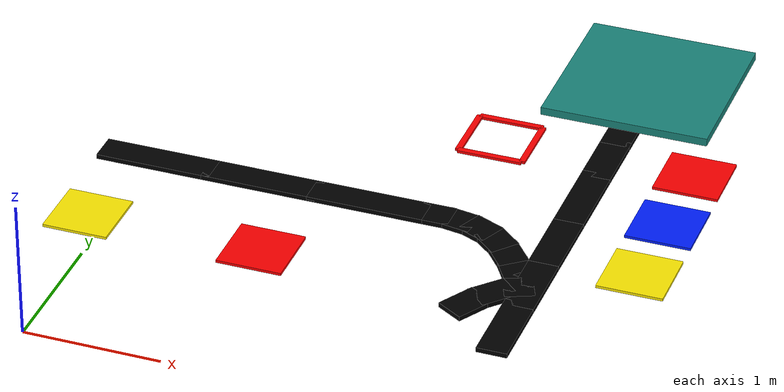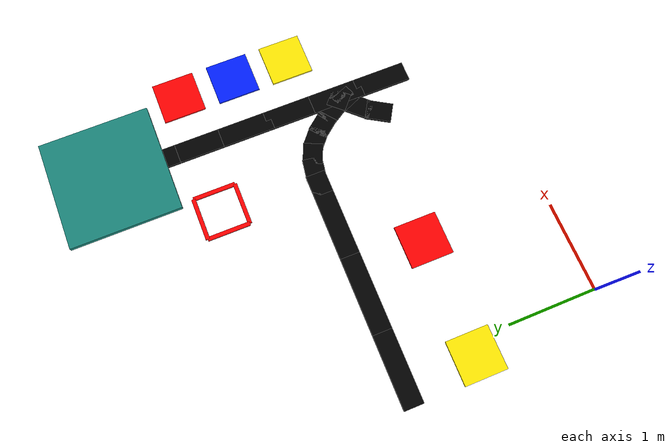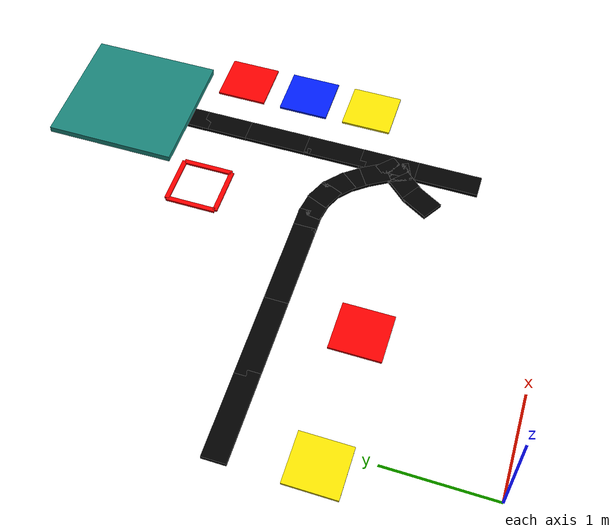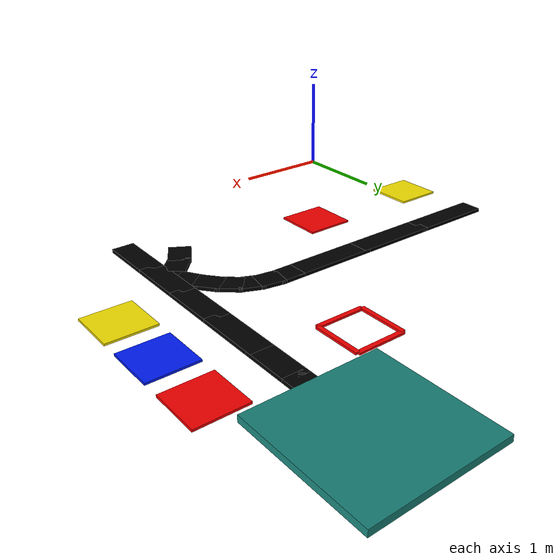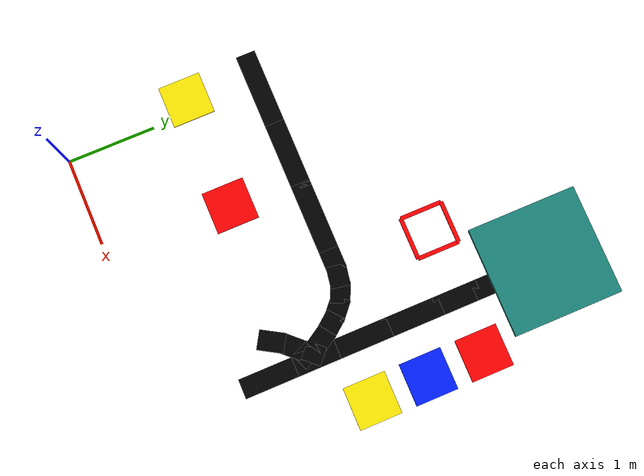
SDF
<sdf version="1.6">
 <world name="agv_factory_final_box_agv_v2">
  <include><uri>model://sun</uri></include>
  <model name="main_loop_42">
   <static>true</static>
   <pose>0.0500 2.2500 0.0175 0 0 0.0000</pose>
   <link name="link">
    <collision name="collision"><geometry><box><size>0.8600 0.2200 0.0350</size></box></geometry></collision>
    <visual name="visual">
     <geometry><box><size>0.8600 0.2200 0.0350</size></box></geometry>
     <material><ambient>0 0 0 1</ambient><diffuse>0 0 0 1</diffuse></material>
    </visual>
   </link>
  </model>
  <model name="main_loop_43">
   <static>true</static>
   <pose>0.8500 2.2500 0.0175 0 0 0.0000</pose>
   <link name="link">
    <collision name="collision"><geometry><box><size>0.8600 0.2200 0.0350</size></box></geometry></collision>
    <visual name="visual">
     <geometry><box><size>0.8600 0.2200 0.0350</size></box></geometry>
     <material><ambient>0 0 0 1</ambient><diffuse>0 0 0 1</diffuse></material>
    </visual>
   </link>
  </model>
  <model name="main_loop_44">
   <static>true</static>
   <pose>1.6500 2.2500 0.0175 0 0 0.0000</pose>
   <link name="link">
    <collision name="collision"><geometry><box><size>0.8600 0.2200 0.0350</size></box></geometry></collision>
    <visual name="visual">
     <geometry><box><size>0.8600 0.2200 0.0350</size></box></geometry>
     <material><ambient>0 0 0 1</ambient><diffuse>0 0 0 1</diffuse></material>
    </visual>
   </link>
  </model>
  <model name="main_loop_45">
   <static>true</static>
   <pose>2.1450 2.2500 0.0175 0 0 0.0000</pose>
   <link name="link">
    <collision name="collision"><geometry><box><size>0.2500 0.2200 0.0350</size></box></geometry></collision>
    <visual name="visual">
     <geometry><box><size>0.2500 0.2200 0.0350</size></box></geometry>
     <material><ambient>0 0 0 1</ambient><diffuse>0 0 0 1</diffuse></material>
    </visual>
   </link>
  </model>
  <model name="main_loop_46">
   <static>true</static>
   <pose>2.3300 2.2350 0.0175 0 0 -0.1651</pose>
   <link name="link">
    <collision name="collision"><geometry><box><size>0.2425 0.2200 0.0350</size></box></geometry></collision>
    <visual name="visual">
     <geometry><box><size>0.2425 0.2200 0.0350</size></box></geometry>
     <material><ambient>0 0 0 1</ambient><diffuse>0 0 0 1</diffuse></material>
    </visual>
   </link>
  </model>
  <model name="main_loop_47">
   <static>true</static>
   <pose>2.5000 2.1850 0.0175 0 0 -0.4124</pose>
   <link name="link">
    <collision name="collision"><geometry><box><size>0.2346 0.2200 0.0350</size></box></geometry></collision>
    <visual name="visual">
     <geometry><box><size>0.2346 0.2200 0.0350</size></box></geometry>
     <material><ambient>0 0 0 1</ambient><diffuse>0 0 0 1</diffuse></material>
    </visual>
   </link>
  </model>
  <model name="main_loop_48">
   <static>true</static>
   <pose>2.6500 2.0900 0.0175 0 0 -0.7086</pose>
   <link name="link">
    <collision name="collision"><geometry><box><size>0.2444 0.2200 0.0350</size></box></geometry></collision>
    <visual name="visual">
     <geometry><box><size>0.2444 0.2200 0.0350</size></box></geometry>
     <material><ambient>0 0 0 1</ambient><diffuse>0 0 0 1</diffuse></material>
    </visual>
   </link>
  </model>
  <model name="main_loop_49">
   <static>true</static>
   <pose>2.7800 1.9550 0.0175 0 0 -0.8961</pose>
   <link name="link">
    <collision name="collision"><geometry><box><size>0.2521 0.2200 0.0350</size></box></geometry></collision>
    <visual name="visual">
     <geometry><box><size>0.2521 0.2200 0.0350</size></box></geometry>
     <material><ambient>0 0 0 1</ambient><diffuse>0 0 0 1</diffuse></material>
    </visual>
   </link>
  </model>
  <model name="main_loop_50">
   <static>true</static>
   <pose>2.8900 1.8000 0.0175 0 0 -1.0122</pose>
   <link name="link">
    <collision name="collision"><geometry><box><size>0.2487 0.2200 0.0350</size></box></geometry></collision>
    <visual name="visual">
     <geometry><box><size>0.2487 0.2200 0.0350</size></box></geometry>
     <material><ambient>0 0 0 1</ambient><diffuse>0 0 0 1</diffuse></material>
    </visual>
   </link>
  </model>
  <model name="main_loop_51">
   <static>true</static>
   <pose>2.9950 1.6700 0.0175 0 0 -0.7378</pose>
   <link name="link">
    <collision name="collision"><geometry><box><size>0.2087 0.2200 0.0350</size></box></geometry></collision>
    <visual name="visual">
     <geometry><box><size>0.2087 0.2200 0.0350</size></box></geometry>
     <material><ambient>0 0 0 1</ambient><diffuse>0 0 0 1</diffuse></material>
    </visual>
   </link>
  </model>
  <model name="main_loop_52">
   <static>true</static>
   <pose>2.9800 1.5900 0.0175 0 0 -2.7367</pose>
   <link name="link">
    <collision name="collision"><geometry><box><size>0.2123 0.2200 0.0350</size></box></geometry></collision>
    <visual name="visual">
     <geometry><box><size>0.2123 0.2200 0.0350</size></box></geometry>
     <material><ambient>0 0 0 1</ambient><diffuse>0 0 0 1</diffuse></material>
    </visual>
   </link>
  </model>
  <model name="main_loop_53">
   <static>true</static>
   <pose>2.8350 1.4800 0.0175 0 0 -2.3239</pose>
   <link name="link">
    <collision name="collision"><geometry><box><size>0.2793 0.2200 0.0350</size></box></geometry></collision>
    <visual name="visual">
     <geometry><box><size>0.2793 0.2200 0.0350</size></box></geometry>
     <material><ambient>0 0 0 1</ambient><diffuse>0 0 0 1</diffuse></material>
    </visual>
   </link>
  </model>
  <model name="main_loop_54">
   <static>true</static>
   <pose>2.7000 1.3000 0.0175 0 0 -2.1112</pose>
   <link name="link">
    <collision name="collision"><geometry><box><size>0.2932 0.2200 0.0350</size></box></geometry></collision>
    <visual name="visual">
     <geometry><box><size>0.2932 0.2200 0.0350</size></box></geometry>
     <material><ambient>0 0 0 1</ambient><diffuse>0 0 0 1</diffuse></material>
    </visual>
   </link>
  </model>
  <model name="right_vertical_06">
   <static>true</static>
   <pose>3.0500 1.1250 0.0175 0 0 1.5708</pose>
   <link name="link">
    <collision name="collision"><geometry><box><size>0.6100 0.2200 0.0350</size></box></geometry></collision>
    <visual name="visual">
     <geometry><box><size>0.6100 0.2200 0.0350</size></box></geometry>
     <material><ambient>0 0 0 1</ambient><diffuse>0 0 0 1</diffuse></material>
    </visual>
   </link>
  </model>
  <model name="right_vertical_07">
   <static>true</static>
   <pose>3.0500 1.6750 0.0175 0 0 1.5708</pose>
   <link name="link">
    <collision name="collision"><geometry><box><size>0.6100 0.2200 0.0350</size></box></geometry></collision>
    <visual name="visual">
     <geometry><box><size>0.6100 0.2200 0.0350</size></box></geometry>
     <material><ambient>0 0 0 1</ambient><diffuse>0 0 0 1</diffuse></material>
    </visual>
   </link>
  </model>
  <model name="right_vertical_08">
   <static>true</static>
   <pose>3.0500 2.2250 0.0175 0 0 1.5708</pose>
   <link name="link">
    <collision name="collision"><geometry><box><size>0.6100 0.2200 0.0350</size></box></geometry></collision>
    <visual name="visual">
     <geometry><box><size>0.6100 0.2200 0.0350</size></box></geometry>
     <material><ambient>0 0 0 1</ambient><diffuse>0 0 0 1</diffuse></material>
    </visual>
   </link>
  </model>
  <model name="right_vertical_09">
   <static>true</static>
   <pose>3.0500 2.8000 0.0175 0 0 1.5708</pose>
   <link name="link">
    <collision name="collision"><geometry><box><size>0.6600 0.2200 0.0350</size></box></geometry></collision>
    <visual name="visual">
     <geometry><box><size>0.6600 0.2200 0.0350</size></box></geometry>
     <material><ambient>0 0 0 1</ambient><diffuse>0 0 0 1</diffuse></material>
    </visual>
   </link>
  </model>
  <model name="right_vertical_10">
   <static>true</static>
   <pose>3.0500 3.3250 0.0175 0 0 1.5708</pose>
   <link name="link">
    <collision name="collision"><geometry><box><size>0.5100 0.2200 0.0350</size></box></geometry></collision>
    <visual name="visual">
     <geometry><box><size>0.5100 0.2200 0.0350</size></box></geometry>
     <material><ambient>0 0 0 1</ambient><diffuse>0 0 0 1</diffuse></material>
    </visual>
   </link>
  </model>
  <model name="right_vertical_11">
   <static>true</static>
   <pose>3.0500 3.7250 0.0175 0 0 1.5708</pose>
   <link name="link">
    <collision name="collision"><geometry><box><size>0.4100 0.2200 0.0350</size></box></geometry></collision>
    <visual name="visual">
     <geometry><box><size>0.4100 0.2200 0.0350</size></box></geometry>
     <material><ambient>0 0 0 1</ambient><diffuse>0 0 0 1</diffuse></material>
    </visual>
   </link>
  </model>
  <model name="right_vertical_12">
   <static>true</static>
   <pose>3.0500 4.1750 0.0175 0 0 1.5708</pose>
   <link name="link">
    <collision name="collision"><geometry><box><size>0.6100 0.2200 0.0350</size></box></geometry></collision>
    <visual name="visual">
     <geometry><box><size>0.6100 0.2200 0.0350</size></box></geometry>
     <material><ambient>0 0 0 1</ambient><diffuse>0 0 0 1</diffuse></material>
    </visual>
   </link>
  </model>
  <model name="inout_area">
   <static>true</static>
   <pose>3.0500 4.3500 0.0650 0 0 0.0000</pose>
   <link name="link">
    <collision name="collision"><geometry><box><size>1.2500 1.2500 0.0600</size></box></geometry></collision>
    <visual name="visual">
     <geometry><box><size>1.2500 1.2500 0.0600</size></box></geometry>
     <material><ambient>0.1 0.52 0.48 1.0</ambient><diffuse>0.1 0.52 0.48 1.0</diffuse></material>
    </visual>
   </link>
  </model>
  <model name="finished_yellow_box">
   <static>true</static>
   <pose>-0.1500 1.4500 0.0100 0 0 0.0000</pose>
   <link name="link">
    <collision name="collision"><geometry><box><size>0.4800 0.4800 0.0200</size></box></geometry></collision>
    <visual name="visual">
     <geometry><box><size>0.4800 0.4800 0.0200</size></box></geometry>
     <material><ambient>1.0 0.92 0.0 1.0</ambient><diffuse>1.0 0.92 0.0 1.0</diffuse></material>
    </visual>
   </link>
  </model>
  <model name="finished_red_box">
   <static>true</static>
   <pose>1.1500 1.4500 0.0100 0 0 0.0000</pose>
   <link name="link">
    <collision name="collision"><geometry><box><size>0.4800 0.4800 0.0200</size></box></geometry></collision>
    <visual name="visual">
     <geometry><box><size>0.4800 0.4800 0.0200</size></box></geometry>
     <material><ambient>1.0 0.0 0.0 1.0</ambient><diffuse>1.0 0.0 0.0 1.0</diffuse></material>
    </visual>
   </link>
  </model>
  <model name="inout_red_box">
   <static>true</static>
   <pose>3.7000 3.3500 0.0100 0 0 0.0000</pose>
   <link name="link">
    <collision name="collision"><geometry><box><size>0.4800 0.4800 0.0200</size></box></geometry></collision>
    <visual name="visual">
     <geometry><box><size>0.4800 0.4800 0.0200</size></box></geometry>
     <material><ambient>1.0 0.0 0.0 1.0</ambient><diffuse>1.0 0.0 0.0 1.0</diffuse></material>
    </visual>
   </link>
  </model>
  <model name="inout_yellow_box">
   <static>true</static>
   <pose>3.7000 2.0500 0.0100 0 0 0.0000</pose>
   <link name="link">
    <collision name="collision"><geometry><box><size>0.4800 0.4800 0.0200</size></box></geometry></collision>
    <visual name="visual">
     <geometry><box><size>0.4800 0.4800 0.0200</size></box></geometry>
     <material><ambient>1.0 0.92 0.0 1.0</ambient><diffuse>1.0 0.92 0.0 1.0</diffuse></material>
    </visual>
   </link>
  </model>
  <model name="inout_blue_box">
   <static>true</static>
   <pose>3.7000 2.7000 0.0100 0 0 0.0000</pose>
   <link name="link">
    <collision name="collision"><geometry><box><size>0.4800 0.4800 0.0200</size></box></geometry></collision>
    <visual name="visual">
     <geometry><box><size>0.4800 0.4800 0.0200</size></box></geometry>
     <material><ambient>0.0 0.12 1.0 1.0</ambient><diffuse>0.0 0.12 1.0 1.0</diffuse></material>
    </visual>
   </link>
  </model>
  <model name="inbound_box_top_border">
   <static>true</static>
   <pose>2.2500 3.5900 0.0100 0 0 0.0000</pose>
   <link name="link">
    <collision name="collision"><geometry><box><size>0.4800 0.0450 0.0200</size></box></geometry></collision>
    <visual name="visual">
     <geometry><box><size>0.4800 0.0450 0.0200</size></box></geometry>
     <material><ambient>1.0 0.0 0.0 1.0</ambient><diffuse>1.0 0.0 0.0 1.0</diffuse></material>
    </visual>
   </link>
  </model>
  <model name="inbound_box_bottom_border">
   <static>true</static>
   <pose>2.2500 3.1100 0.0100 0 0 0.0000</pose>
   <link name="link">
    <collision name="collision"><geometry><box><size>0.4800 0.0450 0.0200</size></box></geometry></collision>
    <visual name="visual">
     <geometry><box><size>0.4800 0.0450 0.0200</size></box></geometry>
     <material><ambient>1.0 0.0 0.0 1.0</ambient><diffuse>1.0 0.0 0.0 1.0</diffuse></material>
    </visual>
   </link>
  </model>
  <model name="inbound_box_left_border">
   <static>true</static>
   <pose>2.0100 3.3500 0.0100 0 0 0.0000</pose>
   <link name="link">
    <collision name="collision"><geometry><box><size>0.0450 0.4800 0.0200</size></box></geometry></collision>
    <visual name="visual">
     <geometry><box><size>0.0450 0.4800 0.0200</size></box></geometry>
     <material><ambient>1.0 0.0 0.0 1.0</ambient><diffuse>1.0 0.0 0.0 1.0</diffuse></material>
    </visual>
   </link>
  </model>
  <model name="inbound_box_right_border">
   <static>true</static>
   <pose>2.4900 3.3500 0.0100 0 0 0.0000</pose>
   <link name="link">
    <collision name="collision"><geometry><box><size>0.0450 0.4800 0.0200</size></box></geometry></collision>
    <visual name="visual">
     <geometry><box><size>0.0450 0.4800 0.0200</size></box></geometry>
     <material><ambient>1.0 0.0 0.0 1.0</ambient><diffuse>1.0 0.0 0.0 1.0</diffuse></material>
    </visual>
   </link>
  </model>
 </world>
</sdf>
